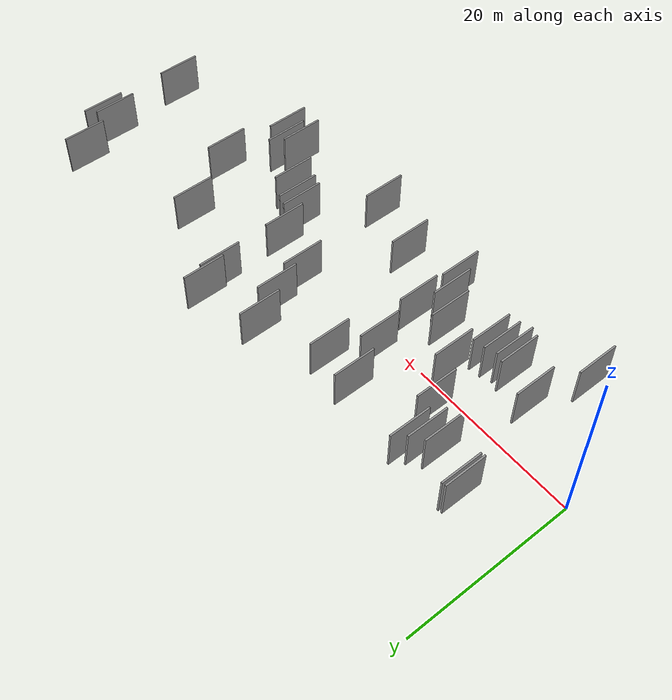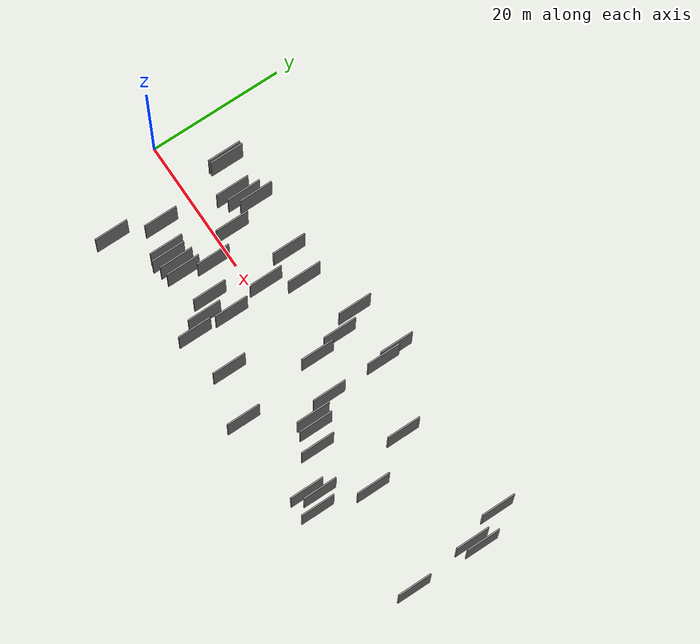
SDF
<sdf version="1.6">
 <world name="default">
  <scene>
   <sky><clouds><speed>12</speed></clouds></sky>
   <ambient>0.4 0.4 0.4 1</ambient>
   <background>0.7 0.7 0.7 1</background>
   <shadows>1</shadows>
  </scene>
  <gravity>0 0 -9.8066</gravity>
  <magnetic_field>6e-06 2.3e-05 -4.2e-05</magnetic_field>
  <physics default="0" name="default_physics" type="ode">
   <ode>
    <solver>
     <type>quick</type>
     <iters>10</iters>
     <sor>1.0</sor>
     <use_dynamic_moi_rescaling>0</use_dynamic_moi_rescaling>
    </solver>
    <constraints>
     <cfm>0</cfm>
     <erp>0.2</erp>
     <contact_max_correcting_vel>100</contact_max_correcting_vel>
     <contact_surface_layer>0.001</contact_surface_layer>
    </constraints>
   </ode>
   <max_step_size>0.004</max_step_size>
   <real_time_factor>1</real_time_factor>
   <real_time_update_rate>250</real_time_update_rate>
  </physics>
  <light name="sun" type="directional">
   <pose>0 0 10 0 0 0</pose>
   <diffuse>0.8 0.8 0.8 1</diffuse>
   <specular>0.2 0.2 0.2 1</specular>
   <attenuation>
    <range>1000</range>
    <constant>0.9</constant>
    <linear>0.01</linear>
    <quadratic>0.001</quadratic>
   </attenuation>
   <direction>-0.5 0.1 -0.9</direction>
  </light>
  <model name="grey_wall_1">
   <static>1</static>
   <pose>38.7993 -11.2165 0.0 0.000000 0.000000 1.570796</pose>
   <link name="link">
    <pose>0 0 2.50 0 0 0</pose>
    <collision name="collision"><geometry><box><size>5.00 0.2 5.00</size></box></geometry></collision>
    <visual name="visual">
     <cast_shadows>0</cast_shadows>
     <geometry><box><size>5.00 0.2 5.00</size></box></geometry>
     <material>
      <script>
       <uri>model://grey_wall/materials/scripts</uri>
       <uri>model://grey_wall/materials/textures</uri>
       <name>vrc/grey_wall</name>
      </script>
     </material>
    </visual>
   </link>
  </model>
  <model name="grey_wall_2">
   <static>1</static>
   <pose>25.3789 -9.9866 0.0 0.000000 0.000000 1.570796</pose>
   <link name="link">
    <pose>0 0 2.50 0 0 0</pose>
    <collision name="collision"><geometry><box><size>5.00 0.2 5.00</size></box></geometry></collision>
    <visual name="visual">
     <cast_shadows>0</cast_shadows>
     <geometry><box><size>5.00 0.2 5.00</size></box></geometry>
     <material>
      <script>
       <uri>model://grey_wall/materials/scripts</uri>
       <uri>model://grey_wall/materials/textures</uri>
       <name>vrc/grey_wall</name>
      </script>
     </material>
    </visual>
   </link>
  </model>
  <model name="grey_wall_3">
   <static>1</static>
   <pose>55.7981 -2.3311 0.0 0.000000 0.000000 1.570796</pose>
   <link name="link">
    <pose>0 0 2.50 0 0 0</pose>
    <collision name="collision"><geometry><box><size>5.00 0.2 5.00</size></box></geometry></collision>
    <visual name="visual">
     <cast_shadows>0</cast_shadows>
     <geometry><box><size>5.00 0.2 5.00</size></box></geometry>
     <material>
      <script>
       <uri>model://grey_wall/materials/scripts</uri>
       <uri>model://grey_wall/materials/textures</uri>
       <name>vrc/grey_wall</name>
      </script>
     </material>
    </visual>
   </link>
  </model>
  <model name="grey_wall_4">
   <static>1</static>
   <pose>11.7300 5.0070 0.0 0.000000 0.000000 1.570796</pose>
   <link name="link">
    <pose>0 0 2.50 0 0 0</pose>
    <collision name="collision"><geometry><box><size>5.00 0.2 5.00</size></box></geometry></collision>
    <visual name="visual">
     <cast_shadows>0</cast_shadows>
     <geometry><box><size>5.00 0.2 5.00</size></box></geometry>
     <material>
      <script>
       <uri>model://grey_wall/materials/scripts</uri>
       <uri>model://grey_wall/materials/textures</uri>
       <name>vrc/grey_wall</name>
      </script>
     </material>
    </visual>
   </link>
  </model>
  <model name="grey_wall_5">
   <static>1</static>
   <pose>47.3231 -5.3096 0.0 0.000000 0.000000 1.570796</pose>
   <link name="link">
    <pose>0 0 2.50 0 0 0</pose>
    <collision name="collision"><geometry><box><size>5.00 0.2 5.00</size></box></geometry></collision>
    <visual name="visual">
     <cast_shadows>0</cast_shadows>
     <geometry><box><size>5.00 0.2 5.00</size></box></geometry>
     <material>
      <script>
       <uri>model://grey_wall/materials/scripts</uri>
       <uri>model://grey_wall/materials/textures</uri>
       <name>vrc/grey_wall</name>
      </script>
     </material>
    </visual>
   </link>
  </model>
  <model name="grey_wall_6">
   <static>1</static>
   <pose>36.0656 5.8049 0.0 0.000000 0.000000 1.570796</pose>
   <link name="link">
    <pose>0 0 2.50 0 0 0</pose>
    <collision name="collision"><geometry><box><size>5.00 0.2 5.00</size></box></geometry></collision>
    <visual name="visual">
     <cast_shadows>0</cast_shadows>
     <geometry><box><size>5.00 0.2 5.00</size></box></geometry>
     <material>
      <script>
       <uri>model://grey_wall/materials/scripts</uri>
       <uri>model://grey_wall/materials/textures</uri>
       <name>vrc/grey_wall</name>
      </script>
     </material>
    </visual>
   </link>
  </model>
  <model name="grey_wall_7">
   <static>1</static>
   <pose>34.4351 9.2944 0.0 0.000000 0.000000 1.570796</pose>
   <link name="link">
    <pose>0 0 2.50 0 0 0</pose>
    <collision name="collision"><geometry><box><size>5.00 0.2 5.00</size></box></geometry></collision>
    <visual name="visual">
     <cast_shadows>0</cast_shadows>
     <geometry><box><size>5.00 0.2 5.00</size></box></geometry>
     <material>
      <script>
       <uri>model://grey_wall/materials/scripts</uri>
       <uri>model://grey_wall/materials/textures</uri>
       <name>vrc/grey_wall</name>
      </script>
     </material>
    </visual>
   </link>
  </model>
  <model name="grey_wall_8">
   <static>1</static>
   <pose>27.0729 6.2187 0.0 0.000000 0.000000 1.570796</pose>
   <link name="link">
    <pose>0 0 2.50 0 0 0</pose>
    <collision name="collision"><geometry><box><size>5.00 0.2 5.00</size></box></geometry></collision>
    <visual name="visual">
     <cast_shadows>0</cast_shadows>
     <geometry><box><size>5.00 0.2 5.00</size></box></geometry>
     <material>
      <script>
       <uri>model://grey_wall/materials/scripts</uri>
       <uri>model://grey_wall/materials/textures</uri>
       <name>vrc/grey_wall</name>
      </script>
     </material>
    </visual>
   </link>
  </model>
  <model name="grey_wall_9">
   <static>1</static>
   <pose>7.9589 -11.7408 0.0 0.000000 0.000000 1.570796</pose>
   <link name="link">
    <pose>0 0 2.50 0 0 0</pose>
    <collision name="collision"><geometry><box><size>5.00 0.2 5.00</size></box></geometry></collision>
    <visual name="visual">
     <cast_shadows>0</cast_shadows>
     <geometry><box><size>5.00 0.2 5.00</size></box></geometry>
     <material>
      <script>
       <uri>model://grey_wall/materials/scripts</uri>
       <uri>model://grey_wall/materials/textures</uri>
       <name>vrc/grey_wall</name>
      </script>
     </material>
    </visual>
   </link>
  </model>
  <model name="grey_wall_10">
   <static>1</static>
   <pose>42.2299 8.5685 0.0 0.000000 0.000000 1.570796</pose>
   <link name="link">
    <pose>0 0 2.50 0 0 0</pose>
    <collision name="collision"><geometry><box><size>5.00 0.2 5.00</size></box></geometry></collision>
    <visual name="visual">
     <cast_shadows>0</cast_shadows>
     <geometry><box><size>5.00 0.2 5.00</size></box></geometry>
     <material>
      <script>
       <uri>model://grey_wall/materials/scripts</uri>
       <uri>model://grey_wall/materials/textures</uri>
       <name>vrc/grey_wall</name>
      </script>
     </material>
    </visual>
   </link>
  </model>
  <model name="grey_wall_11">
   <static>1</static>
   <pose>41.8410 10.8781 0.0 0.000000 0.000000 1.570796</pose>
   <link name="link">
    <pose>0 0 2.50 0 0 0</pose>
    <collision name="collision"><geometry><box><size>5.00 0.2 5.00</size></box></geometry></collision>
    <visual name="visual">
     <cast_shadows>0</cast_shadows>
     <geometry><box><size>5.00 0.2 5.00</size></box></geometry>
     <material>
      <script>
       <uri>model://grey_wall/materials/scripts</uri>
       <uri>model://grey_wall/materials/textures</uri>
       <name>vrc/grey_wall</name>
      </script>
     </material>
    </visual>
   </link>
  </model>
  <model name="grey_wall_12">
   <static>1</static>
   <pose>25.6566 -4.3999 0.0 0.000000 0.000000 1.570796</pose>
   <link name="link">
    <pose>0 0 2.50 0 0 0</pose>
    <collision name="collision"><geometry><box><size>5.00 0.2 5.00</size></box></geometry></collision>
    <visual name="visual">
     <cast_shadows>0</cast_shadows>
     <geometry><box><size>5.00 0.2 5.00</size></box></geometry>
     <material>
      <script>
       <uri>model://grey_wall/materials/scripts</uri>
       <uri>model://grey_wall/materials/textures</uri>
       <name>vrc/grey_wall</name>
      </script>
     </material>
    </visual>
   </link>
  </model>
  <model name="grey_wall_13">
   <static>1</static>
   <pose>52.4814 -8.4280 0.0 0.000000 0.000000 1.570796</pose>
   <link name="link">
    <pose>0 0 2.50 0 0 0</pose>
    <collision name="collision"><geometry><box><size>5.00 0.2 5.00</size></box></geometry></collision>
    <visual name="visual">
     <cast_shadows>0</cast_shadows>
     <geometry><box><size>5.00 0.2 5.00</size></box></geometry>
     <material>
      <script>
       <uri>model://grey_wall/materials/scripts</uri>
       <uri>model://grey_wall/materials/textures</uri>
       <name>vrc/grey_wall</name>
      </script>
     </material>
    </visual>
   </link>
  </model>
  <model name="grey_wall_14">
   <static>1</static>
   <pose>69.7185 -5.4685 0.0 0.000000 0.000000 1.570796</pose>
   <link name="link">
    <pose>0 0 2.50 0 0 0</pose>
    <collision name="collision"><geometry><box><size>5.00 0.2 5.00</size></box></geometry></collision>
    <visual name="visual">
     <cast_shadows>0</cast_shadows>
     <geometry><box><size>5.00 0.2 5.00</size></box></geometry>
     <material>
      <script>
       <uri>model://grey_wall/materials/scripts</uri>
       <uri>model://grey_wall/materials/textures</uri>
       <name>vrc/grey_wall</name>
      </script>
     </material>
    </visual>
   </link>
  </model>
  <model name="grey_wall_15">
   <static>1</static>
   <pose>13.0926 5.9286 0.0 0.000000 0.000000 1.570796</pose>
   <link name="link">
    <pose>0 0 2.50 0 0 0</pose>
    <collision name="collision"><geometry><box><size>5.00 0.2 5.00</size></box></geometry></collision>
    <visual name="visual">
     <cast_shadows>0</cast_shadows>
     <geometry><box><size>5.00 0.2 5.00</size></box></geometry>
     <material>
      <script>
       <uri>model://grey_wall/materials/scripts</uri>
       <uri>model://grey_wall/materials/textures</uri>
       <name>vrc/grey_wall</name>
      </script>
     </material>
    </visual>
   </link>
  </model>
  <model name="grey_wall_16">
   <static>1</static>
   <pose>14.1656 7.1655 0.0 0.000000 0.000000 1.570796</pose>
   <link name="link">
    <pose>0 0 2.50 0 0 0</pose>
    <collision name="collision"><geometry><box><size>5.00 0.2 5.00</size></box></geometry></collision>
    <visual name="visual">
     <cast_shadows>0</cast_shadows>
     <geometry><box><size>5.00 0.2 5.00</size></box></geometry>
     <material>
      <script>
       <uri>model://grey_wall/materials/scripts</uri>
       <uri>model://grey_wall/materials/textures</uri>
       <name>vrc/grey_wall</name>
      </script>
     </material>
    </visual>
   </link>
  </model>
  <model name="grey_wall_17">
   <static>1</static>
   <pose>54.1721 -9.9161 0.0 0.000000 0.000000 1.570796</pose>
   <link name="link">
    <pose>0 0 2.50 0 0 0</pose>
    <collision name="collision"><geometry><box><size>5.00 0.2 5.00</size></box></geometry></collision>
    <visual name="visual">
     <cast_shadows>0</cast_shadows>
     <geometry><box><size>5.00 0.2 5.00</size></box></geometry>
     <material>
      <script>
       <uri>model://grey_wall/materials/scripts</uri>
       <uri>model://grey_wall/materials/textures</uri>
       <name>vrc/grey_wall</name>
      </script>
     </material>
    </visual>
   </link>
  </model>
  <model name="grey_wall_18">
   <static>1</static>
   <pose>68.8448 4.1552 0.0 0.000000 0.000000 1.570796</pose>
   <link name="link">
    <pose>0 0 2.50 0 0 0</pose>
    <collision name="collision"><geometry><box><size>5.00 0.2 5.00</size></box></geometry></collision>
    <visual name="visual">
     <cast_shadows>0</cast_shadows>
     <geometry><box><size>5.00 0.2 5.00</size></box></geometry>
     <material>
      <script>
       <uri>model://grey_wall/materials/scripts</uri>
       <uri>model://grey_wall/materials/textures</uri>
       <name>vrc/grey_wall</name>
      </script>
     </material>
    </visual>
   </link>
  </model>
  <model name="grey_wall_19">
   <static>1</static>
   <pose>22.1797 -5.5335 0.0 0.000000 0.000000 1.570796</pose>
   <link name="link">
    <pose>0 0 2.50 0 0 0</pose>
    <collision name="collision"><geometry><box><size>5.00 0.2 5.00</size></box></geometry></collision>
    <visual name="visual">
     <cast_shadows>0</cast_shadows>
     <geometry><box><size>5.00 0.2 5.00</size></box></geometry>
     <material>
      <script>
       <uri>model://grey_wall/materials/scripts</uri>
       <uri>model://grey_wall/materials/textures</uri>
       <name>vrc/grey_wall</name>
      </script>
     </material>
    </visual>
   </link>
  </model>
  <model name="grey_wall_20">
   <static>1</static>
   <pose>36.9171 1.7299 0.0 0.000000 0.000000 1.570796</pose>
   <link name="link">
    <pose>0 0 2.50 0 0 0</pose>
    <collision name="collision"><geometry><box><size>5.00 0.2 5.00</size></box></geometry></collision>
    <visual name="visual">
     <cast_shadows>0</cast_shadows>
     <geometry><box><size>5.00 0.2 5.00</size></box></geometry>
     <material>
      <script>
       <uri>model://grey_wall/materials/scripts</uri>
       <uri>model://grey_wall/materials/textures</uri>
       <name>vrc/grey_wall</name>
      </script>
     </material>
    </visual>
   </link>
  </model>
  <model name="grey_wall_21">
   <static>1</static>
   <pose>15.8495 2.2173 0.0 0.000000 0.000000 1.570796</pose>
   <link name="link">
    <pose>0 0 2.50 0 0 0</pose>
    <collision name="collision"><geometry><box><size>5.00 0.2 5.00</size></box></geometry></collision>
    <visual name="visual">
     <cast_shadows>0</cast_shadows>
     <geometry><box><size>5.00 0.2 5.00</size></box></geometry>
     <material>
      <script>
       <uri>model://grey_wall/materials/scripts</uri>
       <uri>model://grey_wall/materials/textures</uri>
       <name>vrc/grey_wall</name>
      </script>
     </material>
    </visual>
   </link>
  </model>
  <model name="grey_wall_22">
   <static>1</static>
   <pose>32.0097 -8.9492 0.0 0.000000 0.000000 1.570796</pose>
   <link name="link">
    <pose>0 0 2.50 0 0 0</pose>
    <collision name="collision"><geometry><box><size>5.00 0.2 5.00</size></box></geometry></collision>
    <visual name="visual">
     <cast_shadows>0</cast_shadows>
     <geometry><box><size>5.00 0.2 5.00</size></box></geometry>
     <material>
      <script>
       <uri>model://grey_wall/materials/scripts</uri>
       <uri>model://grey_wall/materials/textures</uri>
       <name>vrc/grey_wall</name>
      </script>
     </material>
    </visual>
   </link>
  </model>
  <model name="grey_wall_23">
   <static>1</static>
   <pose>13.6922 -6.7933 0.0 0.000000 0.000000 1.570796</pose>
   <link name="link">
    <pose>0 0 2.50 0 0 0</pose>
    <collision name="collision"><geometry><box><size>5.00 0.2 5.00</size></box></geometry></collision>
    <visual name="visual">
     <cast_shadows>0</cast_shadows>
     <geometry><box><size>5.00 0.2 5.00</size></box></geometry>
     <material>
      <script>
       <uri>model://grey_wall/materials/scripts</uri>
       <uri>model://grey_wall/materials/textures</uri>
       <name>vrc/grey_wall</name>
      </script>
     </material>
    </visual>
   </link>
  </model>
  <model name="grey_wall_24">
   <static>1</static>
   <pose>22.6982 6.7340 0.0 0.000000 0.000000 1.570796</pose>
   <link name="link">
    <pose>0 0 2.50 0 0 0</pose>
    <collision name="collision"><geometry><box><size>5.00 0.2 5.00</size></box></geometry></collision>
    <visual name="visual">
     <cast_shadows>0</cast_shadows>
     <geometry><box><size>5.00 0.2 5.00</size></box></geometry>
     <material>
      <script>
       <uri>model://grey_wall/materials/scripts</uri>
       <uri>model://grey_wall/materials/textures</uri>
       <name>vrc/grey_wall</name>
      </script>
     </material>
    </visual>
   </link>
  </model>
  <model name="grey_wall_25">
   <static>1</static>
   <pose>24.6915 1.7070 0.0 0.000000 0.000000 1.570796</pose>
   <link name="link">
    <pose>0 0 2.50 0 0 0</pose>
    <collision name="collision"><geometry><box><size>5.00 0.2 5.00</size></box></geometry></collision>
    <visual name="visual">
     <cast_shadows>0</cast_shadows>
     <geometry><box><size>5.00 0.2 5.00</size></box></geometry>
     <material>
      <script>
       <uri>model://grey_wall/materials/scripts</uri>
       <uri>model://grey_wall/materials/textures</uri>
       <name>vrc/grey_wall</name>
      </script>
     </material>
    </visual>
   </link>
  </model>
  <model name="grey_wall_26">
   <static>1</static>
   <pose>44.8303 -3.9033 0.0 0.000000 0.000000 1.570796</pose>
   <link name="link">
    <pose>0 0 2.50 0 0 0</pose>
    <collision name="collision"><geometry><box><size>5.00 0.2 5.00</size></box></geometry></collision>
    <visual name="visual">
     <cast_shadows>0</cast_shadows>
     <geometry><box><size>5.00 0.2 5.00</size></box></geometry>
     <material>
      <script>
       <uri>model://grey_wall/materials/scripts</uri>
       <uri>model://grey_wall/materials/textures</uri>
       <name>vrc/grey_wall</name>
      </script>
     </material>
    </visual>
   </link>
  </model>
  <model name="grey_wall_27">
   <static>1</static>
   <pose>69.8069 5.1434 0.0 0.000000 0.000000 1.570796</pose>
   <link name="link">
    <pose>0 0 2.50 0 0 0</pose>
    <collision name="collision"><geometry><box><size>5.00 0.2 5.00</size></box></geometry></collision>
    <visual name="visual">
     <cast_shadows>0</cast_shadows>
     <geometry><box><size>5.00 0.2 5.00</size></box></geometry>
     <material>
      <script>
       <uri>model://grey_wall/materials/scripts</uri>
       <uri>model://grey_wall/materials/textures</uri>
       <name>vrc/grey_wall</name>
      </script>
     </material>
    </visual>
   </link>
  </model>
  <model name="grey_wall_28">
   <static>1</static>
   <pose>43.6022 -3.4928 0.0 0.000000 0.000000 1.570796</pose>
   <link name="link">
    <pose>0 0 2.50 0 0 0</pose>
    <collision name="collision"><geometry><box><size>5.00 0.2 5.00</size></box></geometry></collision>
    <visual name="visual">
     <cast_shadows>0</cast_shadows>
     <geometry><box><size>5.00 0.2 5.00</size></box></geometry>
     <material>
      <script>
       <uri>model://grey_wall/materials/scripts</uri>
       <uri>model://grey_wall/materials/textures</uri>
       <name>vrc/grey_wall</name>
      </script>
     </material>
    </visual>
   </link>
  </model>
  <model name="grey_wall_29">
   <static>1</static>
   <pose>15.9754 -6.7134 0.0 0.000000 0.000000 1.570796</pose>
   <link name="link">
    <pose>0 0 2.50 0 0 0</pose>
    <collision name="collision"><geometry><box><size>5.00 0.2 5.00</size></box></geometry></collision>
    <visual name="visual">
     <cast_shadows>0</cast_shadows>
     <geometry><box><size>5.00 0.2 5.00</size></box></geometry>
     <material>
      <script>
       <uri>model://grey_wall/materials/scripts</uri>
       <uri>model://grey_wall/materials/textures</uri>
       <name>vrc/grey_wall</name>
      </script>
     </material>
    </visual>
   </link>
  </model>
  <model name="grey_wall_30">
   <static>1</static>
   <pose>7.0749 6.7991 0.0 0.000000 0.000000 1.570796</pose>
   <link name="link">
    <pose>0 0 2.50 0 0 0</pose>
    <collision name="collision"><geometry><box><size>5.00 0.2 5.00</size></box></geometry></collision>
    <visual name="visual">
     <cast_shadows>0</cast_shadows>
     <geometry><box><size>5.00 0.2 5.00</size></box></geometry>
     <material>
      <script>
       <uri>model://grey_wall/materials/scripts</uri>
       <uri>model://grey_wall/materials/textures</uri>
       <name>vrc/grey_wall</name>
      </script>
     </material>
    </visual>
   </link>
  </model>
  <model name="grey_wall_31">
   <static>1</static>
   <pose>14.6717 -7.1499 0.0 0.000000 0.000000 1.570796</pose>
   <link name="link">
    <pose>0 0 2.50 0 0 0</pose>
    <collision name="collision"><geometry><box><size>5.00 0.2 5.00</size></box></geometry></collision>
    <visual name="visual">
     <cast_shadows>0</cast_shadows>
     <geometry><box><size>5.00 0.2 5.00</size></box></geometry>
     <material>
      <script>
       <uri>model://grey_wall/materials/scripts</uri>
       <uri>model://grey_wall/materials/textures</uri>
       <name>vrc/grey_wall</name>
      </script>
     </material>
    </visual>
   </link>
  </model>
  <model name="grey_wall_32">
   <static>1</static>
   <pose>7.5008 6.8829 0.0 0.000000 0.000000 1.570796</pose>
   <link name="link">
    <pose>0 0 2.50 0 0 0</pose>
    <collision name="collision"><geometry><box><size>5.00 0.2 5.00</size></box></geometry></collision>
    <visual name="visual">
     <cast_shadows>0</cast_shadows>
     <geometry><box><size>5.00 0.2 5.00</size></box></geometry>
     <material>
      <script>
       <uri>model://grey_wall/materials/scripts</uri>
       <uri>model://grey_wall/materials/textures</uri>
       <name>vrc/grey_wall</name>
      </script>
     </material>
    </visual>
   </link>
  </model>
  <model name="grey_wall_33">
   <static>1</static>
   <pose>17.3234 -6.5384 0.0 0.000000 0.000000 1.570796</pose>
   <link name="link">
    <pose>0 0 2.50 0 0 0</pose>
    <collision name="collision"><geometry><box><size>5.00 0.2 5.00</size></box></geometry></collision>
    <visual name="visual">
     <cast_shadows>0</cast_shadows>
     <geometry><box><size>5.00 0.2 5.00</size></box></geometry>
     <material>
      <script>
       <uri>model://grey_wall/materials/scripts</uri>
       <uri>model://grey_wall/materials/textures</uri>
       <name>vrc/grey_wall</name>
      </script>
     </material>
    </visual>
   </link>
  </model>
  <model name="grey_wall_34">
   <static>1</static>
   <pose>51.8593 5.1051 0.0 0.000000 0.000000 1.570796</pose>
   <link name="link">
    <pose>0 0 2.50 0 0 0</pose>
    <collision name="collision"><geometry><box><size>5.00 0.2 5.00</size></box></geometry></collision>
    <visual name="visual">
     <cast_shadows>0</cast_shadows>
     <geometry><box><size>5.00 0.2 5.00</size></box></geometry>
     <material>
      <script>
       <uri>model://grey_wall/materials/scripts</uri>
       <uri>model://grey_wall/materials/textures</uri>
       <name>vrc/grey_wall</name>
      </script>
     </material>
    </visual>
   </link>
  </model>
  <model name="grey_wall_35">
   <static>1</static>
   <pose>18.3442 -2.4130 0.0 0.000000 0.000000 1.570796</pose>
   <link name="link">
    <pose>0 0 2.50 0 0 0</pose>
    <collision name="collision"><geometry><box><size>5.00 0.2 5.00</size></box></geometry></collision>
    <visual name="visual">
     <cast_shadows>0</cast_shadows>
     <geometry><box><size>5.00 0.2 5.00</size></box></geometry>
     <material>
      <script>
       <uri>model://grey_wall/materials/scripts</uri>
       <uri>model://grey_wall/materials/textures</uri>
       <name>vrc/grey_wall</name>
      </script>
     </material>
    </visual>
   </link>
  </model>
  <model name="grey_wall_36">
   <static>1</static>
   <pose>42.3487 -0.1178 0.0 0.000000 0.000000 1.570796</pose>
   <link name="link">
    <pose>0 0 2.50 0 0 0</pose>
    <collision name="collision"><geometry><box><size>5.00 0.2 5.00</size></box></geometry></collision>
    <visual name="visual">
     <cast_shadows>0</cast_shadows>
     <geometry><box><size>5.00 0.2 5.00</size></box></geometry>
     <material>
      <script>
       <uri>model://grey_wall/materials/scripts</uri>
       <uri>model://grey_wall/materials/textures</uri>
       <name>vrc/grey_wall</name>
      </script>
     </material>
    </visual>
   </link>
  </model>
  <model name="grey_wall_37">
   <static>1</static>
   <pose>67.1206 9.4026 0.0 0.000000 0.000000 1.570796</pose>
   <link name="link">
    <pose>0 0 2.50 0 0 0</pose>
    <collision name="collision"><geometry><box><size>5.00 0.2 5.00</size></box></geometry></collision>
    <visual name="visual">
     <cast_shadows>0</cast_shadows>
     <geometry><box><size>5.00 0.2 5.00</size></box></geometry>
     <material>
      <script>
       <uri>model://grey_wall/materials/scripts</uri>
       <uri>model://grey_wall/materials/textures</uri>
       <name>vrc/grey_wall</name>
      </script>
     </material>
    </visual>
   </link>
  </model>
  <model name="grey_wall_38">
   <static>1</static>
   <pose>51.4935 -9.8139 0.0 0.000000 0.000000 1.570796</pose>
   <link name="link">
    <pose>0 0 2.50 0 0 0</pose>
    <collision name="collision"><geometry><box><size>5.00 0.2 5.00</size></box></geometry></collision>
    <visual name="visual">
     <cast_shadows>0</cast_shadows>
     <geometry><box><size>5.00 0.2 5.00</size></box></geometry>
     <material>
      <script>
       <uri>model://grey_wall/materials/scripts</uri>
       <uri>model://grey_wall/materials/textures</uri>
       <name>vrc/grey_wall</name>
      </script>
     </material>
    </visual>
   </link>
  </model>
  <model name="grey_wall_39">
   <static>1</static>
   <pose>24.1463 -7.6644 0.0 0.000000 0.000000 1.570796</pose>
   <link name="link">
    <pose>0 0 2.50 0 0 0</pose>
    <collision name="collision"><geometry><box><size>5.00 0.2 5.00</size></box></geometry></collision>
    <visual name="visual">
     <cast_shadows>0</cast_shadows>
     <geometry><box><size>5.00 0.2 5.00</size></box></geometry>
     <material>
      <script>
       <uri>model://grey_wall/materials/scripts</uri>
       <uri>model://grey_wall/materials/textures</uri>
       <name>vrc/grey_wall</name>
      </script>
     </material>
    </visual>
   </link>
  </model>
  <model name="grey_wall_40">
   <static>1</static>
   <pose>10.0114 -5.2711 0.0 0.000000 0.000000 1.570796</pose>
   <link name="link">
    <pose>0 0 2.50 0 0 0</pose>
    <collision name="collision"><geometry><box><size>5.00 0.2 5.00</size></box></geometry></collision>
    <visual name="visual">
     <cast_shadows>0</cast_shadows>
     <geometry><box><size>5.00 0.2 5.00</size></box></geometry>
     <material>
      <script>
       <uri>model://grey_wall/materials/scripts</uri>
       <uri>model://grey_wall/materials/textures</uri>
       <name>vrc/grey_wall</name>
      </script>
     </material>
    </visual>
   </link>
  </model>
 </world>
</sdf>
